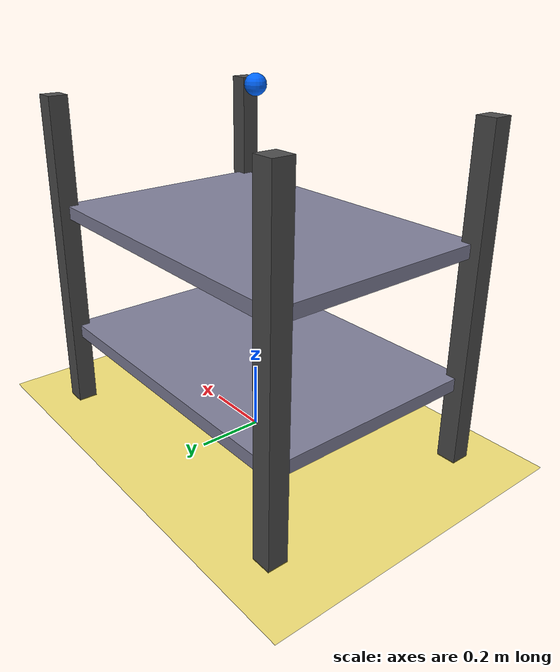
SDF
<?xml version="1.0"?>
<sdf version="1.7">
  <model name="load_station">
    <static>true</static>
    <link name="link">
      <!-- Structural frame posts -->
      <collision name="post_fl"><pose>-0.5  0.35 0.5 0 0 0</pose><geometry><box><size>0.06 0.06 1.0</size></box></geometry></collision>
      <visual name="post_fl"><pose>-0.5  0.35 0.5 0 0 0</pose><geometry><box><size>0.06 0.06 1.0</size></box></geometry><material><ambient>0.3 0.3 0.3 1</ambient></material></visual>
      <collision name="post_fr"><pose>-0.5 -0.35 0.5 0 0 0</pose><geometry><box><size>0.06 0.06 1.0</size></box></geometry></collision>
      <visual name="post_fr"><pose>-0.5 -0.35 0.5 0 0 0</pose><geometry><box><size>0.06 0.06 1.0</size></box></geometry><material><ambient>0.3 0.3 0.3 1</ambient></material></visual>
      <collision name="post_bl"><pose> 0.5  0.35 0.5 0 0 0</pose><geometry><box><size>0.06 0.06 1.0</size></box></geometry></collision>
      <visual name="post_bl"><pose> 0.5  0.35 0.5 0 0 0</pose><geometry><box><size>0.06 0.06 1.0</size></box></geometry><material><ambient>0.3 0.3 0.3 1</ambient></material></visual>
      <collision name="post_br"><pose> 0.5 -0.35 0.5 0 0 0</pose><geometry><box><size>0.06 0.06 1.0</size></box></geometry></collision>
      <visual name="post_br"><pose> 0.5 -0.35 0.5 0 0 0</pose><geometry><box><size>0.06 0.06 1.0</size></box></geometry><material><ambient>0.3 0.3 0.3 1</ambient></material></visual>

      <!-- Shelf surface at AGV pick height (0.25 m) -->
      <collision name="shelf_col"><pose>0 0 0.25 0 0 0</pose><geometry><box><size>1.0 0.7 0.04</size></box></geometry></collision>
      <visual name="shelf">
        <pose>0 0 0.25 0 0 0</pose>
        <geometry><box><size>1.0 0.7 0.04</size></box></geometry>
        <material><ambient>0.5 0.5 0.6 1</ambient><diffuse>0.5 0.5 0.6 1</diffuse></material>
      </visual>

      <!-- Second shelf (storage) -->
      <collision name="shelf2_col"><pose>0 0 0.65 0 0 0</pose><geometry><box><size>1.0 0.7 0.04</size></box></geometry></collision>
      <visual name="shelf2">
        <pose>0 0 0.65 0 0 0</pose>
        <geometry><box><size>1.0 0.7 0.04</size></box></geometry>
        <material><ambient>0.5 0.5 0.6 1</ambient></material>
      </visual>

      <!-- Floor approach zone marking (yellow) -->
      <visual name="zone_marking">
        <pose>0 0 0.001 0 0 0</pose>
        <geometry><box><size>1.4 1.0 0.002</size></box></geometry>
        <material><ambient>0.9 0.8 0.0 0.5</ambient><diffuse>0.9 0.8 0.0 0.5</diffuse></material>
      </visual>

      <!-- "LOAD" indicator light (blue) -->
      <visual name="indicator">
        <pose>0 0 1.05 0 0 0</pose>
        <geometry><sphere><radius>0.03</radius></sphere></geometry>
        <material><ambient>0.0 0.4 1.0 1</ambient><diffuse>0.0 0.4 1.0 1</diffuse><emissive>0.0 0.3 0.8 1</emissive></material>
      </visual>
    </link>
  </model>
</sdf>
